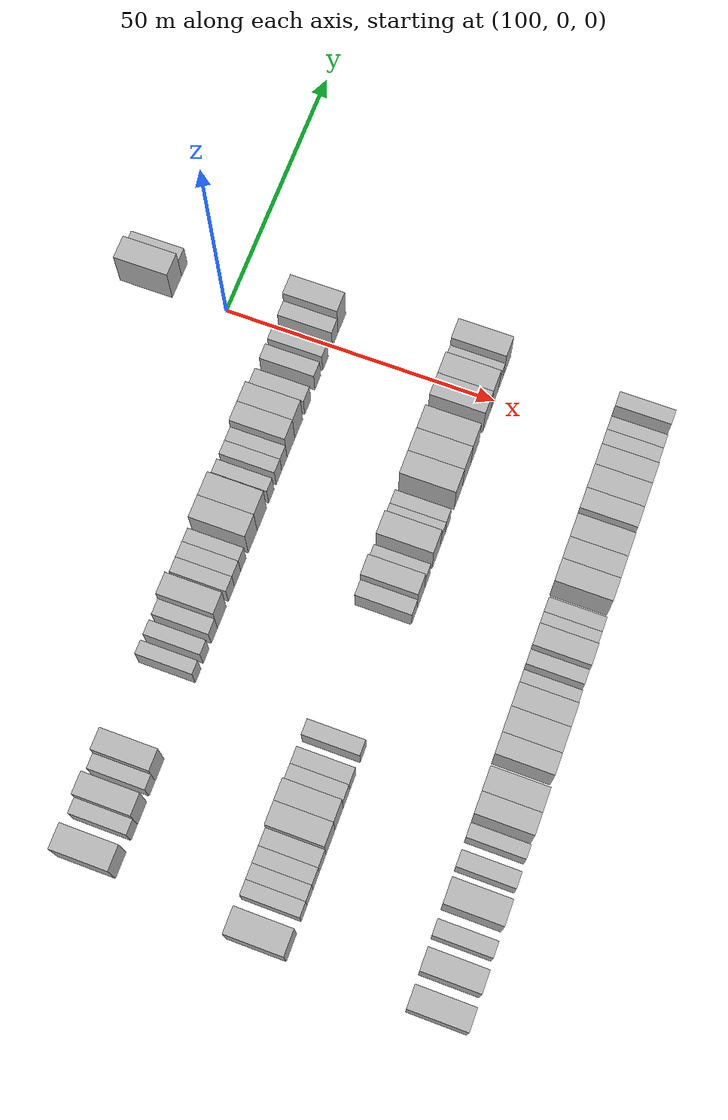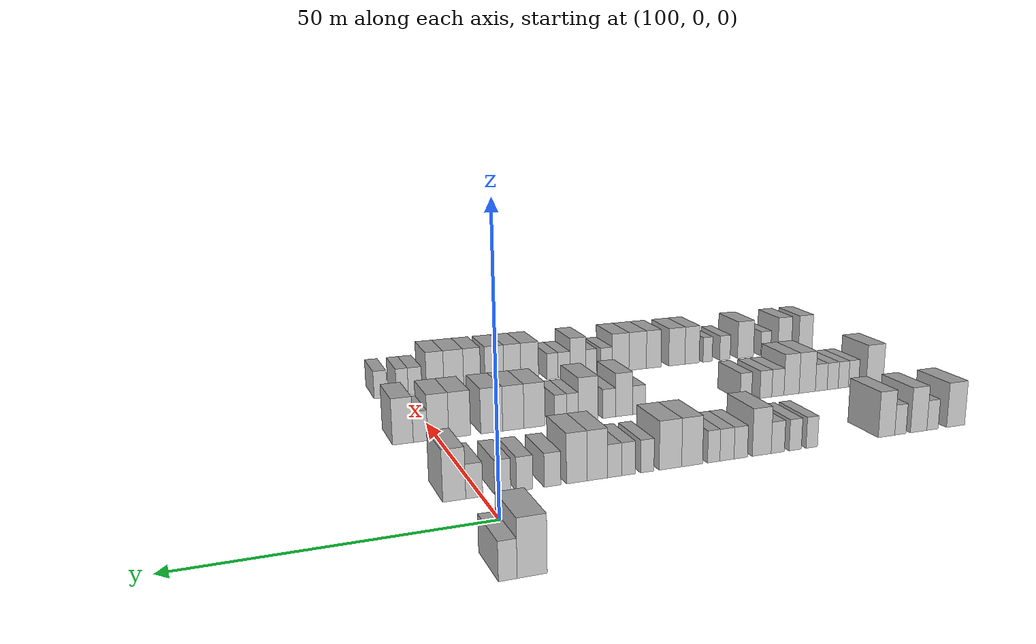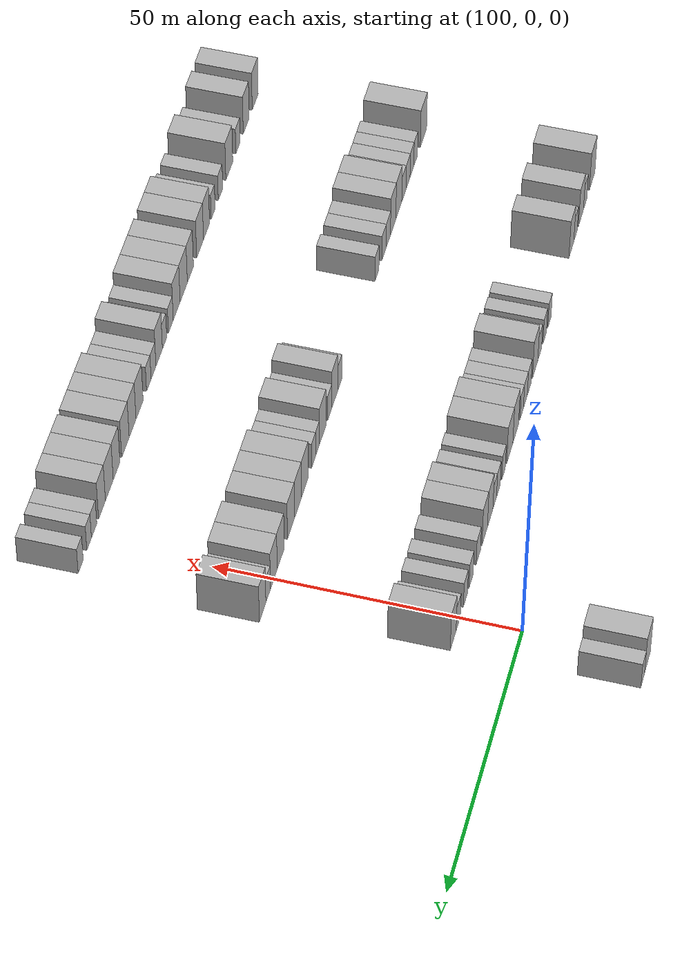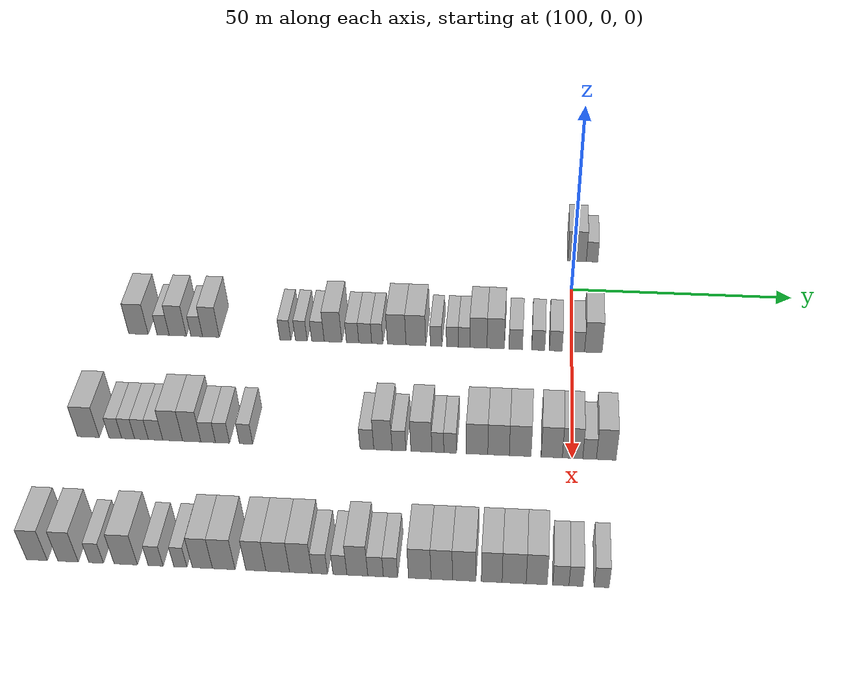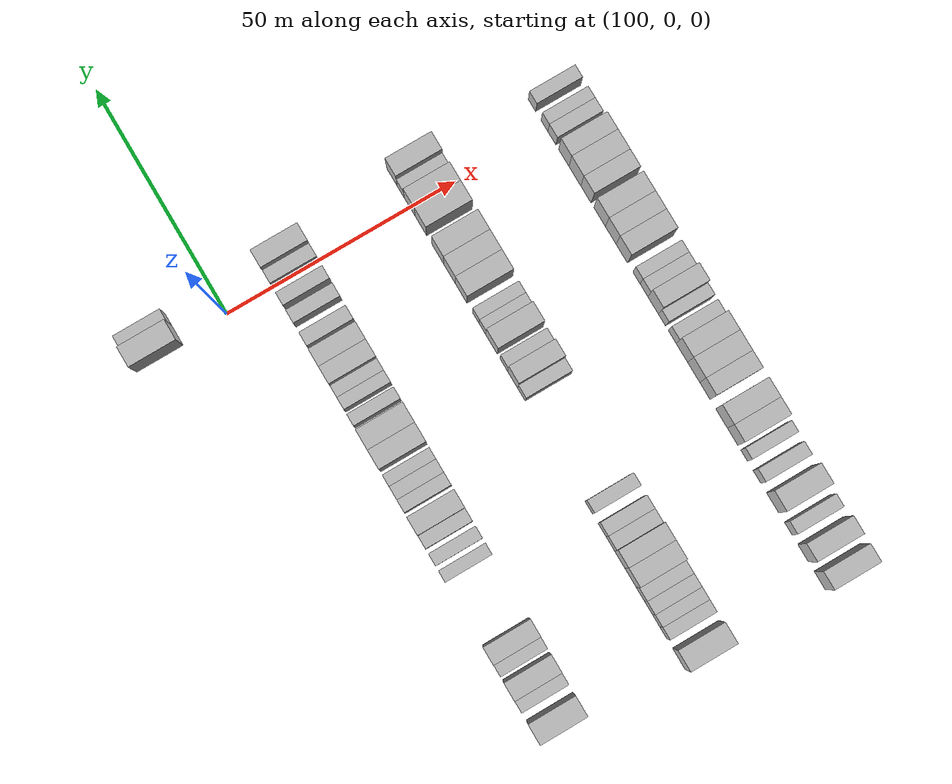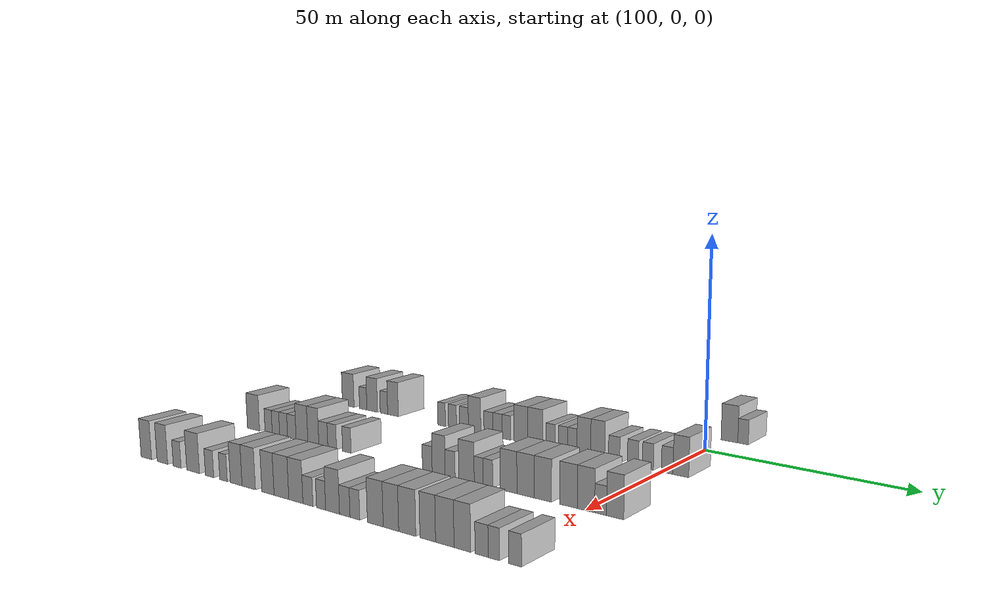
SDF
<sdf version="1.6">
 <world name="default">
  <model name="building_555">
   <static>1</static>
   <pose>85.0000 1.2476 0 0.000000 0.000000 0.000000</pose>
   <link name="link">
    <pose>0 0 4.50 0 0 0</pose>
    <collision name="collision"><geometry><box><size>10.0000 4.3762 9.0000</size></box></geometry></collision>
    <visual name="visual">
     <cast_shadows>0</cast_shadows>
     <geometry><box><size>10.0000 4.3762 9.0000</size></box></geometry>
     <material>
      <script>
       <uri>model://HANNAS_wall/materials/scripts</uri>
       <uri>model://HANNAS_wall/materials/textures</uri>
       <name>vrc/HANNAS_wall</name>
      </script>
     </material>
    </visual>
   </link>
  </model>
  <model name="building_556">
   <static>1</static>
   <pose>85.0000 4.7857 0 0.000000 0.000000 0.000000</pose>
   <link name="link">
    <pose>0 0 3.00 0 0 0</pose>
    <collision name="collision"><geometry><box><size>10.0000 2.7001 6.0000</size></box></geometry></collision>
    <visual name="visual">
     <cast_shadows>0</cast_shadows>
     <geometry><box><size>10.0000 2.7001 6.0000</size></box></geometry>
     <material>
      <script>
       <uri>model://HANNAS_wall/materials/scripts</uri>
       <uri>model://HANNAS_wall/materials/textures</uri>
       <name>vrc/HANNAS_wall</name>
      </script>
     </material>
    </visual>
   </link>
  </model>
  <model name="building_762">
   <static>1</static>
   <pose>115.0000 -95.6572 0 0.000000 0.000000 0.000000</pose>
   <link name="link">
    <pose>0 0 4.50 0 0 0</pose>
    <collision name="collision"><geometry><box><size>10.0000 4.3478 9.0000</size></box></geometry></collision>
    <visual name="visual">
     <cast_shadows>0</cast_shadows>
     <geometry><box><size>10.0000 4.3478 9.0000</size></box></geometry>
     <material>
      <script>
       <uri>model://HANNAS_wall/materials/scripts</uri>
       <uri>model://HANNAS_wall/materials/textures</uri>
       <name>vrc/HANNAS_wall</name>
      </script>
     </material>
    </visual>
   </link>
  </model>
  <model name="building_763">
   <static>1</static>
   <pose>115.0000 -90.1436 0 0.000000 0.000000 0.000000</pose>
   <link name="link">
    <pose>0 0 3.00 0 0 0</pose>
    <collision name="collision"><geometry><box><size>10.0000 2.6794 6.0000</size></box></geometry></collision>
    <visual name="visual">
     <cast_shadows>0</cast_shadows>
     <geometry><box><size>10.0000 2.6794 6.0000</size></box></geometry>
     <material>
      <script>
       <uri>model://HANNAS_wall/materials/scripts</uri>
       <uri>model://HANNAS_wall/materials/textures</uri>
       <name>vrc/HANNAS_wall</name>
      </script>
     </material>
    </visual>
   </link>
  </model>
  <model name="building_764">
   <static>1</static>
   <pose>115.0000 -86.8803 0 0.000000 0.000000 0.000000</pose>
   <link name="link">
    <pose>0 0 4.50 0 0 0</pose>
    <collision name="collision"><geometry><box><size>10.0000 3.8473 9.0000</size></box></geometry></collision>
    <visual name="visual">
     <cast_shadows>0</cast_shadows>
     <geometry><box><size>10.0000 3.8473 9.0000</size></box></geometry>
     <material>
      <script>
       <uri>model://HANNAS_wall/materials/scripts</uri>
       <uri>model://HANNAS_wall/materials/textures</uri>
       <name>vrc/HANNAS_wall</name>
      </script>
     </material>
    </visual>
   </link>
  </model>
  <model name="building_765">
   <static>1</static>
   <pose>115.0000 -82.6501 0 0.000000 0.000000 0.000000</pose>
   <link name="link">
    <pose>0 0 3.00 0 0 0</pose>
    <collision name="collision"><geometry><box><size>10.0000 2.6130 6.0000</size></box></geometry></collision>
    <visual name="visual">
     <cast_shadows>0</cast_shadows>
     <geometry><box><size>10.0000 2.6130 6.0000</size></box></geometry>
     <material>
      <script>
       <uri>model://HANNAS_wall/materials/scripts</uri>
       <uri>model://HANNAS_wall/materials/textures</uri>
       <name>vrc/HANNAS_wall</name>
      </script>
     </material>
    </visual>
   </link>
  </model>
  <model name="building_766">
   <static>1</static>
   <pose>115.0000 -79.4678 0 0.000000 0.000000 0.000000</pose>
   <link name="link">
    <pose>0 0 4.50 0 0 0</pose>
    <collision name="collision"><geometry><box><size>10.0000 3.7517 9.0000</size></box></geometry></collision>
    <visual name="visual">
     <cast_shadows>0</cast_shadows>
     <geometry><box><size>10.0000 3.7517 9.0000</size></box></geometry>
     <material>
      <script>
       <uri>model://HANNAS_wall/materials/scripts</uri>
       <uri>model://HANNAS_wall/materials/textures</uri>
       <name>vrc/HANNAS_wall</name>
      </script>
     </material>
    </visual>
   </link>
  </model>
  <model name="building_767">
   <static>1</static>
   <pose>115.0000 -62.9180 0 0.000000 0.000000 0.000000</pose>
   <link name="link">
    <pose>0 0 3.00 0 0 0</pose>
    <collision name="collision"><geometry><box><size>10.0000 2.4493 6.0000</size></box></geometry></collision>
    <visual name="visual">
     <cast_shadows>0</cast_shadows>
     <geometry><box><size>10.0000 2.4493 6.0000</size></box></geometry>
     <material>
      <script>
       <uri>model://HANNAS_wall/materials/scripts</uri>
       <uri>model://HANNAS_wall/materials/textures</uri>
       <name>vrc/HANNAS_wall</name>
      </script>
     </material>
    </visual>
   </link>
  </model>
  <model name="building_768">
   <static>1</static>
   <pose>115.0000 -59.3934 0 0.000000 0.000000 0.000000</pose>
   <link name="link">
    <pose>0 0 3.00 0 0 0</pose>
    <collision name="collision"><geometry><box><size>10.0000 2.5999 6.0000</size></box></geometry></collision>
    <visual name="visual">
     <cast_shadows>0</cast_shadows>
     <geometry><box><size>10.0000 2.5999 6.0000</size></box></geometry>
     <material>
      <script>
       <uri>model://HANNAS_wall/materials/scripts</uri>
       <uri>model://HANNAS_wall/materials/textures</uri>
       <name>vrc/HANNAS_wall</name>
      </script>
     </material>
    </visual>
   </link>
  </model>
  <model name="building_769">
   <static>1</static>
   <pose>115.0000 -55.7034 0 0.000000 0.000000 0.000000</pose>
   <link name="link">
    <pose>0 0 3.00 0 0 0</pose>
    <collision name="collision"><geometry><box><size>10.0000 2.7802 6.0000</size></box></geometry></collision>
    <visual name="visual">
     <cast_shadows>0</cast_shadows>
     <geometry><box><size>10.0000 2.7802 6.0000</size></box></geometry>
     <material>
      <script>
       <uri>model://HANNAS_wall/materials/scripts</uri>
       <uri>model://HANNAS_wall/materials/textures</uri>
       <name>vrc/HANNAS_wall</name>
      </script>
     </material>
    </visual>
   </link>
  </model>
  <model name="building_770">
   <static>1</static>
   <pose>115.0000 -52.3634 0 0.000000 0.000000 0.000000</pose>
   <link name="link">
    <pose>0 0 4.50 0 0 0</pose>
    <collision name="collision"><geometry><box><size>10.0000 3.8999 9.0000</size></box></geometry></collision>
    <visual name="visual">
     <cast_shadows>0</cast_shadows>
     <geometry><box><size>10.0000 3.8999 9.0000</size></box></geometry>
     <material>
      <script>
       <uri>model://HANNAS_wall/materials/scripts</uri>
       <uri>model://HANNAS_wall/materials/textures</uri>
       <name>vrc/HANNAS_wall</name>
      </script>
     </material>
    </visual>
   </link>
  </model>
  <model name="building_771">
   <static>1</static>
   <pose>115.0000 -48.0493 0 0.000000 0.000000 0.000000</pose>
   <link name="link">
    <pose>0 0 3.00 0 0 0</pose>
    <collision name="collision"><geometry><box><size>10.0000 2.7282 6.0000</size></box></geometry></collision>
    <visual name="visual">
     <cast_shadows>0</cast_shadows>
     <geometry><box><size>10.0000 2.7282 6.0000</size></box></geometry>
     <material>
      <script>
       <uri>model://HANNAS_wall/materials/scripts</uri>
       <uri>model://HANNAS_wall/materials/textures</uri>
       <name>vrc/HANNAS_wall</name>
      </script>
     </material>
    </visual>
   </link>
  </model>
  <model name="building_772">
   <static>1</static>
   <pose>115.0000 -45.2593 0 0.000000 0.000000 0.000000</pose>
   <link name="link">
    <pose>0 0 3.00 0 0 0</pose>
    <collision name="collision"><geometry><box><size>10.0000 2.8518 6.0000</size></box></geometry></collision>
    <visual name="visual">
     <cast_shadows>0</cast_shadows>
     <geometry><box><size>10.0000 2.8518 6.0000</size></box></geometry>
     <material>
      <script>
       <uri>model://HANNAS_wall/materials/scripts</uri>
       <uri>model://HANNAS_wall/materials/textures</uri>
       <name>vrc/HANNAS_wall</name>
      </script>
     </material>
    </visual>
   </link>
  </model>
  <model name="building_773">
   <static>1</static>
   <pose>115.0000 -42.6046 0 0.000000 0.000000 0.000000</pose>
   <link name="link">
    <pose>0 0 3.00 0 0 0</pose>
    <collision name="collision"><geometry><box><size>10.0000 2.4575 6.0000</size></box></geometry></collision>
    <visual name="visual">
     <cast_shadows>0</cast_shadows>
     <geometry><box><size>10.0000 2.4575 6.0000</size></box></geometry>
     <material>
      <script>
       <uri>model://HANNAS_wall/materials/scripts</uri>
       <uri>model://HANNAS_wall/materials/textures</uri>
       <name>vrc/HANNAS_wall</name>
      </script>
     </material>
    </visual>
   </link>
  </model>
  <model name="building_774">
   <static>1</static>
   <pose>115.0000 -38.3271 0 0.000000 0.000000 0.000000</pose>
   <link name="link">
    <pose>0 0 4.50 0 0 0</pose>
    <collision name="collision"><geometry><box><size>10.0000 4.0976 9.0000</size></box></geometry></collision>
    <visual name="visual">
     <cast_shadows>0</cast_shadows>
     <geometry><box><size>10.0000 4.0976 9.0000</size></box></geometry>
     <material>
      <script>
       <uri>model://HANNAS_wall/materials/scripts</uri>
       <uri>model://HANNAS_wall/materials/textures</uri>
       <name>vrc/HANNAS_wall</name>
      </script>
     </material>
    </visual>
   </link>
  </model>
  <model name="building_775">
   <static>1</static>
   <pose>115.0000 -34.1061 0 0.000000 0.000000 0.000000</pose>
   <link name="link">
    <pose>0 0 4.50 0 0 0</pose>
    <collision name="collision"><geometry><box><size>10.0000 4.3443 9.0000</size></box></geometry></collision>
    <visual name="visual">
     <cast_shadows>0</cast_shadows>
     <geometry><box><size>10.0000 4.3443 9.0000</size></box></geometry>
     <material>
      <script>
       <uri>model://HANNAS_wall/materials/scripts</uri>
       <uri>model://HANNAS_wall/materials/textures</uri>
       <name>vrc/HANNAS_wall</name>
      </script>
     </material>
    </visual>
   </link>
  </model>
  <model name="building_776">
   <static>1</static>
   <pose>115.0000 -29.6674 0 0.000000 0.000000 0.000000</pose>
   <link name="link">
    <pose>0 0 3.00 0 0 0</pose>
    <collision name="collision"><geometry><box><size>10.0000 2.5332 6.0000</size></box></geometry></collision>
    <visual name="visual">
     <cast_shadows>0</cast_shadows>
     <geometry><box><size>10.0000 2.5332 6.0000</size></box></geometry>
     <material>
      <script>
       <uri>model://HANNAS_wall/materials/scripts</uri>
       <uri>model://HANNAS_wall/materials/textures</uri>
       <name>vrc/HANNAS_wall</name>
      </script>
     </material>
    </visual>
   </link>
  </model>
  <model name="building_777">
   <static>1</static>
   <pose>115.0000 -26.1018 0 0.000000 0.000000 0.000000</pose>
   <link name="link">
    <pose>0 0 3.00 0 0 0</pose>
    <collision name="collision"><geometry><box><size>10.0000 2.5980 6.0000</size></box></geometry></collision>
    <visual name="visual">
     <cast_shadows>0</cast_shadows>
     <geometry><box><size>10.0000 2.5980 6.0000</size></box></geometry>
     <material>
      <script>
       <uri>model://HANNAS_wall/materials/scripts</uri>
       <uri>model://HANNAS_wall/materials/textures</uri>
       <name>vrc/HANNAS_wall</name>
      </script>
     </material>
    </visual>
   </link>
  </model>
  <model name="building_778">
   <static>1</static>
   <pose>115.0000 -23.5207 0 0.000000 0.000000 0.000000</pose>
   <link name="link">
    <pose>0 0 3.00 0 0 0</pose>
    <collision name="collision"><geometry><box><size>10.0000 2.5643 6.0000</size></box></geometry></collision>
    <visual name="visual">
     <cast_shadows>0</cast_shadows>
     <geometry><box><size>10.0000 2.5643 6.0000</size></box></geometry>
     <material>
      <script>
       <uri>model://HANNAS_wall/materials/scripts</uri>
       <uri>model://HANNAS_wall/materials/textures</uri>
       <name>vrc/HANNAS_wall</name>
      </script>
     </material>
    </visual>
   </link>
  </model>
  <model name="building_779">
   <static>1</static>
   <pose>115.0000 -20.3742 0 0.000000 0.000000 0.000000</pose>
   <link name="link">
    <pose>0 0 4.50 0 0 0</pose>
    <collision name="collision"><geometry><box><size>10.0000 3.7287 9.0000</size></box></geometry></collision>
    <visual name="visual">
     <cast_shadows>0</cast_shadows>
     <geometry><box><size>10.0000 3.7287 9.0000</size></box></geometry>
     <material>
      <script>
       <uri>model://HANNAS_wall/materials/scripts</uri>
       <uri>model://HANNAS_wall/materials/textures</uri>
       <name>vrc/HANNAS_wall</name>
      </script>
     </material>
    </visual>
   </link>
  </model>
  <model name="building_780">
   <static>1</static>
   <pose>115.0000 -16.6239 0 0.000000 0.000000 0.000000</pose>
   <link name="link">
    <pose>0 0 4.50 0 0 0</pose>
    <collision name="collision"><geometry><box><size>10.0000 3.7720 9.0000</size></box></geometry></collision>
    <visual name="visual">
     <cast_shadows>0</cast_shadows>
     <geometry><box><size>10.0000 3.7720 9.0000</size></box></geometry>
     <material>
      <script>
       <uri>model://HANNAS_wall/materials/scripts</uri>
       <uri>model://HANNAS_wall/materials/textures</uri>
       <name>vrc/HANNAS_wall</name>
      </script>
     </material>
    </visual>
   </link>
  </model>
  <model name="building_781">
   <static>1</static>
   <pose>115.0000 -12.2601 0 0.000000 0.000000 0.000000</pose>
   <link name="link">
    <pose>0 0 3.00 0 0 0</pose>
    <collision name="collision"><geometry><box><size>10.0000 2.9555 6.0000</size></box></geometry></collision>
    <visual name="visual">
     <cast_shadows>0</cast_shadows>
     <geometry><box><size>10.0000 2.9555 6.0000</size></box></geometry>
     <material>
      <script>
       <uri>model://HANNAS_wall/materials/scripts</uri>
       <uri>model://HANNAS_wall/materials/textures</uri>
       <name>vrc/HANNAS_wall</name>
      </script>
     </material>
    </visual>
   </link>
  </model>
  <model name="building_782">
   <static>1</static>
   <pose>115.0000 -7.3558 0 0.000000 0.000000 0.000000</pose>
   <link name="link">
    <pose>0 0 3.00 0 0 0</pose>
    <collision name="collision"><geometry><box><size>10.0000 2.8531 6.0000</size></box></geometry></collision>
    <visual name="visual">
     <cast_shadows>0</cast_shadows>
     <geometry><box><size>10.0000 2.8531 6.0000</size></box></geometry>
     <material>
      <script>
       <uri>model://HANNAS_wall/materials/scripts</uri>
       <uri>model://HANNAS_wall/materials/textures</uri>
       <name>vrc/HANNAS_wall</name>
      </script>
     </material>
    </visual>
   </link>
  </model>
  <model name="building_783">
   <static>1</static>
   <pose>115.0000 -3.5425 0 0.000000 0.000000 0.000000</pose>
   <link name="link">
    <pose>0 0 3.00 0 0 0</pose>
    <collision name="collision"><geometry><box><size>10.0000 2.7734 6.0000</size></box></geometry></collision>
    <visual name="visual">
     <cast_shadows>0</cast_shadows>
     <geometry><box><size>10.0000 2.7734 6.0000</size></box></geometry>
     <material>
      <script>
       <uri>model://HANNAS_wall/materials/scripts</uri>
       <uri>model://HANNAS_wall/materials/textures</uri>
       <name>vrc/HANNAS_wall</name>
      </script>
     </material>
    </visual>
   </link>
  </model>
  <model name="building_784">
   <static>1</static>
   <pose>115.0000 1.2769 0 0.000000 0.000000 0.000000</pose>
   <link name="link">
    <pose>0 0 3.00 0 0 0</pose>
    <collision name="collision"><geometry><box><size>10.0000 2.8654 6.0000</size></box></geometry></collision>
    <visual name="visual">
     <cast_shadows>0</cast_shadows>
     <geometry><box><size>10.0000 2.8654 6.0000</size></box></geometry>
     <material>
      <script>
       <uri>model://HANNAS_wall/materials/scripts</uri>
       <uri>model://HANNAS_wall/materials/textures</uri>
       <name>vrc/HANNAS_wall</name>
      </script>
     </material>
    </visual>
   </link>
  </model>
  <model name="building_785">
   <static>1</static>
   <pose>115.0000 4.6219 0 0.000000 0.000000 0.000000</pose>
   <link name="link">
    <pose>0 0 4.50 0 0 0</pose>
    <collision name="collision"><geometry><box><size>10.0000 3.8247 9.0000</size></box></geometry></collision>
    <visual name="visual">
     <cast_shadows>0</cast_shadows>
     <geometry><box><size>10.0000 3.8247 9.0000</size></box></geometry>
     <material>
      <script>
       <uri>model://HANNAS_wall/materials/scripts</uri>
       <uri>model://HANNAS_wall/materials/textures</uri>
       <name>vrc/HANNAS_wall</name>
      </script>
     </material>
    </visual>
   </link>
  </model>
  <model name="building_985">
   <static>1</static>
   <pose>145.0000 -98.2015 0 0.000000 0.000000 0.000000</pose>
   <link name="link">
    <pose>0 0 4.50 0 0 0</pose>
    <collision name="collision"><geometry><box><size>10.0000 4.4924 9.0000</size></box></geometry></collision>
    <visual name="visual">
     <cast_shadows>0</cast_shadows>
     <geometry><box><size>10.0000 4.4924 9.0000</size></box></geometry>
     <material>
      <script>
       <uri>model://HANNAS_wall/materials/scripts</uri>
       <uri>model://HANNAS_wall/materials/textures</uri>
       <name>vrc/HANNAS_wall</name>
      </script>
     </material>
    </visual>
   </link>
  </model>
  <model name="building_986">
   <static>1</static>
   <pose>145.0000 -92.6456 0 0.000000 0.000000 0.000000</pose>
   <link name="link">
    <pose>0 0 3.00 0 0 0</pose>
    <collision name="collision"><geometry><box><size>10.0000 2.6193 6.0000</size></box></geometry></collision>
    <visual name="visual">
     <cast_shadows>0</cast_shadows>
     <geometry><box><size>10.0000 2.6193 6.0000</size></box></geometry>
     <material>
      <script>
       <uri>model://HANNAS_wall/materials/scripts</uri>
       <uri>model://HANNAS_wall/materials/textures</uri>
       <name>vrc/HANNAS_wall</name>
      </script>
     </material>
    </visual>
   </link>
  </model>
  <model name="building_987">
   <static>1</static>
   <pose>145.0000 -90.0050 0 0.000000 0.000000 0.000000</pose>
   <link name="link">
    <pose>0 0 3.00 0 0 0</pose>
    <collision name="collision"><geometry><box><size>10.0000 2.6620 6.0000</size></box></geometry></collision>
    <visual name="visual">
     <cast_shadows>0</cast_shadows>
     <geometry><box><size>10.0000 2.6620 6.0000</size></box></geometry>
     <material>
      <script>
       <uri>model://HANNAS_wall/materials/scripts</uri>
       <uri>model://HANNAS_wall/materials/textures</uri>
       <name>vrc/HANNAS_wall</name>
      </script>
     </material>
    </visual>
   </link>
  </model>
  <model name="building_988">
   <static>1</static>
   <pose>145.0000 -87.2623 0 0.000000 0.000000 0.000000</pose>
   <link name="link">
    <pose>0 0 3.00 0 0 0</pose>
    <collision name="collision"><geometry><box><size>10.0000 2.8235 6.0000</size></box></geometry></collision>
    <visual name="visual">
     <cast_shadows>0</cast_shadows>
     <geometry><box><size>10.0000 2.8235 6.0000</size></box></geometry>
     <material>
      <script>
       <uri>model://HANNAS_wall/materials/scripts</uri>
       <uri>model://HANNAS_wall/materials/textures</uri>
       <name>vrc/HANNAS_wall</name>
      </script>
     </material>
    </visual>
   </link>
  </model>
  <model name="building_989">
   <static>1</static>
   <pose>145.0000 -84.3665 0 0.000000 0.000000 0.000000</pose>
   <link name="link">
    <pose>0 0 3.00 0 0 0</pose>
    <collision name="collision"><geometry><box><size>10.0000 2.9680 6.0000</size></box></geometry></collision>
    <visual name="visual">
     <cast_shadows>0</cast_shadows>
     <geometry><box><size>10.0000 2.9680 6.0000</size></box></geometry>
     <material>
      <script>
       <uri>model://HANNAS_wall/materials/scripts</uri>
       <uri>model://HANNAS_wall/materials/textures</uri>
       <name>vrc/HANNAS_wall</name>
      </script>
     </material>
    </visual>
   </link>
  </model>
  <model name="building_990">
   <static>1</static>
   <pose>145.0000 -80.8509 0 0.000000 0.000000 0.000000</pose>
   <link name="link">
    <pose>0 0 4.50 0 0 0</pose>
    <collision name="collision"><geometry><box><size>10.0000 4.0632 9.0000</size></box></geometry></collision>
    <visual name="visual">
     <cast_shadows>0</cast_shadows>
     <geometry><box><size>10.0000 4.0632 9.0000</size></box></geometry>
     <material>
      <script>
       <uri>model://HANNAS_wall/materials/scripts</uri>
       <uri>model://HANNAS_wall/materials/textures</uri>
       <name>vrc/HANNAS_wall</name>
      </script>
     </material>
    </visual>
   </link>
  </model>
  <model name="building_991">
   <static>1</static>
   <pose>145.0000 -76.9511 0 0.000000 0.000000 0.000000</pose>
   <link name="link">
    <pose>0 0 4.50 0 0 0</pose>
    <collision name="collision"><geometry><box><size>10.0000 3.7365 9.0000</size></box></geometry></collision>
    <visual name="visual">
     <cast_shadows>0</cast_shadows>
     <geometry><box><size>10.0000 3.7365 9.0000</size></box></geometry>
     <material>
      <script>
       <uri>model://HANNAS_wall/materials/scripts</uri>
       <uri>model://HANNAS_wall/materials/textures</uri>
       <name>vrc/HANNAS_wall</name>
      </script>
     </material>
    </visual>
   </link>
  </model>
  <model name="building_992">
   <static>1</static>
   <pose>145.0000 -73.5906 0 0.000000 0.000000 0.000000</pose>
   <link name="link">
    <pose>0 0 3.00 0 0 0</pose>
    <collision name="collision"><geometry><box><size>10.0000 2.9845 6.0000</size></box></geometry></collision>
    <visual name="visual">
     <cast_shadows>0</cast_shadows>
     <geometry><box><size>10.0000 2.9845 6.0000</size></box></geometry>
     <material>
      <script>
       <uri>model://HANNAS_wall/materials/scripts</uri>
       <uri>model://HANNAS_wall/materials/textures</uri>
       <name>vrc/HANNAS_wall</name>
      </script>
     </material>
    </visual>
   </link>
  </model>
  <model name="building_993">
   <static>1</static>
   <pose>145.0000 -70.6553 0 0.000000 0.000000 0.000000</pose>
   <link name="link">
    <pose>0 0 3.00 0 0 0</pose>
    <collision name="collision"><geometry><box><size>10.0000 2.8861 6.0000</size></box></geometry></collision>
    <visual name="visual">
     <cast_shadows>0</cast_shadows>
     <geometry><box><size>10.0000 2.8861 6.0000</size></box></geometry>
     <material>
      <script>
       <uri>model://HANNAS_wall/materials/scripts</uri>
       <uri>model://HANNAS_wall/materials/textures</uri>
       <name>vrc/HANNAS_wall</name>
      </script>
     </material>
    </visual>
   </link>
  </model>
  <model name="building_994">
   <static>1</static>
   <pose>145.0000 -65.8470 0 0.000000 0.000000 0.000000</pose>
   <link name="link">
    <pose>0 0 3.00 0 0 0</pose>
    <collision name="collision"><geometry><box><size>10.0000 2.7307 6.0000</size></box></geometry></collision>
    <visual name="visual">
     <cast_shadows>0</cast_shadows>
     <geometry><box><size>10.0000 2.7307 6.0000</size></box></geometry>
     <material>
      <script>
       <uri>model://HANNAS_wall/materials/scripts</uri>
       <uri>model://HANNAS_wall/materials/textures</uri>
       <name>vrc/HANNAS_wall</name>
      </script>
     </material>
    </visual>
   </link>
  </model>
  <model name="building_995">
   <static>1</static>
   <pose>145.0000 -41.2814 0 0.000000 0.000000 0.000000</pose>
   <link name="link">
    <pose>0 0 3.00 0 0 0</pose>
    <collision name="collision"><geometry><box><size>10.0000 2.8001 6.0000</size></box></geometry></collision>
    <visual name="visual">
     <cast_shadows>0</cast_shadows>
     <geometry><box><size>10.0000 2.8001 6.0000</size></box></geometry>
     <material>
      <script>
       <uri>model://HANNAS_wall/materials/scripts</uri>
       <uri>model://HANNAS_wall/materials/textures</uri>
       <name>vrc/HANNAS_wall</name>
      </script>
     </material>
    </visual>
   </link>
  </model>
  <model name="building_996">
   <static>1</static>
   <pose>145.0000 -38.0317 0 0.000000 0.000000 0.000000</pose>
   <link name="link">
    <pose>0 0 4.50 0 0 0</pose>
    <collision name="collision"><geometry><box><size>10.0000 3.6993 9.0000</size></box></geometry></collision>
    <visual name="visual">
     <cast_shadows>0</cast_shadows>
     <geometry><box><size>10.0000 3.6993 9.0000</size></box></geometry>
     <material>
      <script>
       <uri>model://HANNAS_wall/materials/scripts</uri>
       <uri>model://HANNAS_wall/materials/textures</uri>
       <name>vrc/HANNAS_wall</name>
      </script>
     </material>
    </visual>
   </link>
  </model>
  <model name="building_997">
   <static>1</static>
   <pose>145.0000 -34.7916 0 0.000000 0.000000 0.000000</pose>
   <link name="link">
    <pose>0 0 3.00 0 0 0</pose>
    <collision name="collision"><geometry><box><size>10.0000 2.7809 6.0000</size></box></geometry></collision>
    <visual name="visual">
     <cast_shadows>0</cast_shadows>
     <geometry><box><size>10.0000 2.7809 6.0000</size></box></geometry>
     <material>
      <script>
       <uri>model://HANNAS_wall/materials/scripts</uri>
       <uri>model://HANNAS_wall/materials/textures</uri>
       <name>vrc/HANNAS_wall</name>
      </script>
     </material>
    </visual>
   </link>
  </model>
  <model name="building_998">
   <static>1</static>
   <pose>145.0000 -30.2820 0 0.000000 0.000000 0.000000</pose>
   <link name="link">
    <pose>0 0 4.50 0 0 0</pose>
    <collision name="collision"><geometry><box><size>10.0000 4.2382 9.0000</size></box></geometry></collision>
    <visual name="visual">
     <cast_shadows>0</cast_shadows>
     <geometry><box><size>10.0000 4.2382 9.0000</size></box></geometry>
     <material>
      <script>
       <uri>model://HANNAS_wall/materials/scripts</uri>
       <uri>model://HANNAS_wall/materials/textures</uri>
       <name>vrc/HANNAS_wall</name>
      </script>
     </material>
    </visual>
   </link>
  </model>
  <model name="building_999">
   <static>1</static>
   <pose>145.0000 -26.9569 0 0.000000 0.000000 0.000000</pose>
   <link name="link">
    <pose>0 0 3.00 0 0 0</pose>
    <collision name="collision"><geometry><box><size>10.0000 2.4120 6.0000</size></box></geometry></collision>
    <visual name="visual">
     <cast_shadows>0</cast_shadows>
     <geometry><box><size>10.0000 2.4120 6.0000</size></box></geometry>
     <material>
      <script>
       <uri>model://HANNAS_wall/materials/scripts</uri>
       <uri>model://HANNAS_wall/materials/textures</uri>
       <name>vrc/HANNAS_wall</name>
      </script>
     </material>
    </visual>
   </link>
  </model>
  <model name="building_1000">
   <static>1</static>
   <pose>145.0000 -24.4877 0 0.000000 0.000000 0.000000</pose>
   <link name="link">
    <pose>0 0 3.00 0 0 0</pose>
    <collision name="collision"><geometry><box><size>10.0000 2.5264 6.0000</size></box></geometry></collision>
    <visual name="visual">
     <cast_shadows>0</cast_shadows>
     <geometry><box><size>10.0000 2.5264 6.0000</size></box></geometry>
     <material>
      <script>
       <uri>model://HANNAS_wall/materials/scripts</uri>
       <uri>model://HANNAS_wall/materials/textures</uri>
       <name>vrc/HANNAS_wall</name>
      </script>
     </material>
    </visual>
   </link>
  </model>
  <model name="building_1001">
   <static>1</static>
   <pose>145.0000 -19.0742 0 0.000000 0.000000 0.000000</pose>
   <link name="link">
    <pose>0 0 4.50 0 0 0</pose>
    <collision name="collision"><geometry><box><size>10.0000 4.3006 9.0000</size></box></geometry></collision>
    <visual name="visual">
     <cast_shadows>0</cast_shadows>
     <geometry><box><size>10.0000 4.3006 9.0000</size></box></geometry>
     <material>
      <script>
       <uri>model://HANNAS_wall/materials/scripts</uri>
       <uri>model://HANNAS_wall/materials/textures</uri>
       <name>vrc/HANNAS_wall</name>
      </script>
     </material>
    </visual>
   </link>
  </model>
  <model name="building_1002">
   <static>1</static>
   <pose>145.0000 -14.7671 0 0.000000 0.000000 0.000000</pose>
   <link name="link">
    <pose>0 0 4.50 0 0 0</pose>
    <collision name="collision"><geometry><box><size>10.0000 4.3137 9.0000</size></box></geometry></collision>
    <visual name="visual">
     <cast_shadows>0</cast_shadows>
     <geometry><box><size>10.0000 4.3137 9.0000</size></box></geometry>
     <material>
      <script>
       <uri>model://HANNAS_wall/materials/scripts</uri>
       <uri>model://HANNAS_wall/materials/textures</uri>
       <name>vrc/HANNAS_wall</name>
      </script>
     </material>
    </visual>
   </link>
  </model>
  <model name="building_1003">
   <static>1</static>
   <pose>145.0000 -10.4313 0 0.000000 0.000000 0.000000</pose>
   <link name="link">
    <pose>0 0 4.50 0 0 0</pose>
    <collision name="collision"><geometry><box><size>10.0000 4.3578 9.0000</size></box></geometry></collision>
    <visual name="visual">
     <cast_shadows>0</cast_shadows>
     <geometry><box><size>10.0000 4.3578 9.0000</size></box></geometry>
     <material>
      <script>
       <uri>model://HANNAS_wall/materials/scripts</uri>
       <uri>model://HANNAS_wall/materials/textures</uri>
       <name>vrc/HANNAS_wall</name>
      </script>
     </material>
    </visual>
   </link>
  </model>
  <model name="building_1004">
   <static>1</static>
   <pose>145.0000 -4.1289 0 0.000000 0.000000 0.000000</pose>
   <link name="link">
    <pose>0 0 4.50 0 0 0</pose>
    <collision name="collision"><geometry><box><size>10.0000 4.2470 9.0000</size></box></geometry></collision>
    <visual name="visual">
     <cast_shadows>0</cast_shadows>
     <geometry><box><size>10.0000 4.2470 9.0000</size></box></geometry>
     <material>
      <script>
       <uri>model://HANNAS_wall/materials/scripts</uri>
       <uri>model://HANNAS_wall/materials/textures</uri>
       <name>vrc/HANNAS_wall</name>
      </script>
     </material>
    </visual>
   </link>
  </model>
  <model name="building_1005">
   <static>1</static>
   <pose>145.0000 0.0272 0 0.000000 0.000000 0.000000</pose>
   <link name="link">
    <pose>0 0 4.50 0 0 0</pose>
    <collision name="collision"><geometry><box><size>10.0000 4.0651 9.0000</size></box></geometry></collision>
    <visual name="visual">
     <cast_shadows>0</cast_shadows>
     <geometry><box><size>10.0000 4.0651 9.0000</size></box></geometry>
     <material>
      <script>
       <uri>model://HANNAS_wall/materials/scripts</uri>
       <uri>model://HANNAS_wall/materials/textures</uri>
       <name>vrc/HANNAS_wall</name>
      </script>
     </material>
    </visual>
   </link>
  </model>
  <model name="building_1006">
   <static>1</static>
   <pose>145.0000 3.4234 0 0.000000 0.000000 0.000000</pose>
   <link name="link">
    <pose>0 0 3.00 0 0 0</pose>
    <collision name="collision"><geometry><box><size>10.0000 2.7273 6.0000</size></box></geometry></collision>
    <visual name="visual">
     <cast_shadows>0</cast_shadows>
     <geometry><box><size>10.0000 2.7273 6.0000</size></box></geometry>
     <material>
      <script>
       <uri>model://HANNAS_wall/materials/scripts</uri>
       <uri>model://HANNAS_wall/materials/textures</uri>
       <name>vrc/HANNAS_wall</name>
      </script>
     </material>
    </visual>
   </link>
  </model>
  <model name="building_1007">
   <static>1</static>
   <pose>145.0000 6.7383 0 0.000000 0.000000 0.000000</pose>
   <link name="link">
    <pose>0 0 4.50 0 0 0</pose>
    <collision name="collision"><geometry><box><size>10.0000 3.9027 9.0000</size></box></geometry></collision>
    <visual name="visual">
     <cast_shadows>0</cast_shadows>
     <geometry><box><size>10.0000 3.9027 9.0000</size></box></geometry>
     <material>
      <script>
       <uri>model://HANNAS_wall/materials/scripts</uri>
       <uri>model://HANNAS_wall/materials/textures</uri>
       <name>vrc/HANNAS_wall</name>
      </script>
     </material>
    </visual>
   </link>
  </model>
  <model name="building_1208">
   <static>1</static>
   <pose>175.0000 -99.1918 0 0.000000 0.000000 0.000000</pose>
   <link name="link">
    <pose>0 0 4.50 0 0 0</pose>
    <collision name="collision"><geometry><box><size>10.0000 3.8965 9.0000</size></box></geometry></collision>
    <visual name="visual">
     <cast_shadows>0</cast_shadows>
     <geometry><box><size>10.0000 3.8965 9.0000</size></box></geometry>
     <material>
      <script>
       <uri>model://HANNAS_wall/materials/scripts</uri>
       <uri>model://HANNAS_wall/materials/textures</uri>
       <name>vrc/HANNAS_wall</name>
      </script>
     </material>
    </visual>
   </link>
  </model>
  <model name="building_1209">
   <static>1</static>
   <pose>175.0000 -93.3314 0 0.000000 0.000000 0.000000</pose>
   <link name="link">
    <pose>0 0 4.50 0 0 0</pose>
    <collision name="collision"><geometry><box><size>10.0000 3.8244 9.0000</size></box></geometry></collision>
    <visual name="visual">
     <cast_shadows>0</cast_shadows>
     <geometry><box><size>10.0000 3.8244 9.0000</size></box></geometry>
     <material>
      <script>
       <uri>model://HANNAS_wall/materials/scripts</uri>
       <uri>model://HANNAS_wall/materials/textures</uri>
       <name>vrc/HANNAS_wall</name>
      </script>
     </material>
    </visual>
   </link>
  </model>
  <model name="building_1210">
   <static>1</static>
   <pose>175.0000 -88.0474 0 0.000000 0.000000 0.000000</pose>
   <link name="link">
    <pose>0 0 3.00 0 0 0</pose>
    <collision name="collision"><geometry><box><size>10.0000 2.7438 6.0000</size></box></geometry></collision>
    <visual name="visual">
     <cast_shadows>0</cast_shadows>
     <geometry><box><size>10.0000 2.7438 6.0000</size></box></geometry>
     <material>
      <script>
       <uri>model://HANNAS_wall/materials/scripts</uri>
       <uri>model://HANNAS_wall/materials/textures</uri>
       <name>vrc/HANNAS_wall</name>
      </script>
     </material>
    </visual>
   </link>
  </model>
  <model name="building_1211">
   <static>1</static>
   <pose>175.0000 -82.4904 0 0.000000 0.000000 0.000000</pose>
   <link name="link">
    <pose>0 0 4.50 0 0 0</pose>
    <collision name="collision"><geometry><box><size>10.0000 4.3701 9.0000</size></box></geometry></collision>
    <visual name="visual">
     <cast_shadows>0</cast_shadows>
     <geometry><box><size>10.0000 4.3701 9.0000</size></box></geometry>
     <material>
      <script>
       <uri>model://HANNAS_wall/materials/scripts</uri>
       <uri>model://HANNAS_wall/materials/textures</uri>
       <name>vrc/HANNAS_wall</name>
      </script>
     </material>
    </visual>
   </link>
  </model>
  <model name="building_1212">
   <static>1</static>
   <pose>175.0000 -76.9031 0 0.000000 0.000000 0.000000</pose>
   <link name="link">
    <pose>0 0 3.00 0 0 0</pose>
    <collision name="collision"><geometry><box><size>10.0000 2.8047 6.0000</size></box></geometry></collision>
    <visual name="visual">
     <cast_shadows>0</cast_shadows>
     <geometry><box><size>10.0000 2.8047 6.0000</size></box></geometry>
     <material>
      <script>
       <uri>model://HANNAS_wall/materials/scripts</uri>
       <uri>model://HANNAS_wall/materials/textures</uri>
       <name>vrc/HANNAS_wall</name>
      </script>
     </material>
    </visual>
   </link>
  </model>
  <model name="building_1213">
   <static>1</static>
   <pose>175.0000 -72.2775 0 0.000000 0.000000 0.000000</pose>
   <link name="link">
    <pose>0 0 3.00 0 0 0</pose>
    <collision name="collision"><geometry><box><size>10.0000 2.4464 6.0000</size></box></geometry></collision>
    <visual name="visual">
     <cast_shadows>0</cast_shadows>
     <geometry><box><size>10.0000 2.4464 6.0000</size></box></geometry>
     <material>
      <script>
       <uri>model://HANNAS_wall/materials/scripts</uri>
       <uri>model://HANNAS_wall/materials/textures</uri>
       <name>vrc/HANNAS_wall</name>
      </script>
     </material>
    </visual>
   </link>
  </model>
  <model name="building_1214">
   <static>1</static>
   <pose>175.0000 -68.1742 0 0.000000 0.000000 0.000000</pose>
   <link name="link">
    <pose>0 0 4.50 0 0 0</pose>
    <collision name="collision"><geometry><box><size>10.0000 3.7603 9.0000</size></box></geometry></collision>
    <visual name="visual">
     <cast_shadows>0</cast_shadows>
     <geometry><box><size>10.0000 3.7603 9.0000</size></box></geometry>
     <material>
      <script>
       <uri>model://HANNAS_wall/materials/scripts</uri>
       <uri>model://HANNAS_wall/materials/textures</uri>
       <name>vrc/HANNAS_wall</name>
      </script>
     </material>
    </visual>
   </link>
  </model>
  <model name="building_1215">
   <static>1</static>
   <pose>175.0000 -64.1934 0 0.000000 0.000000 0.000000</pose>
   <link name="link">
    <pose>0 0 4.50 0 0 0</pose>
    <collision name="collision"><geometry><box><size>10.0000 4.2013 9.0000</size></box></geometry></collision>
    <visual name="visual">
     <cast_shadows>0</cast_shadows>
     <geometry><box><size>10.0000 4.2013 9.0000</size></box></geometry>
     <material>
      <script>
       <uri>model://HANNAS_wall/materials/scripts</uri>
       <uri>model://HANNAS_wall/materials/textures</uri>
       <name>vrc/HANNAS_wall</name>
      </script>
     </material>
    </visual>
   </link>
  </model>
  <model name="building_1216">
   <static>1</static>
   <pose>175.0000 -58.2281 0 0.000000 0.000000 0.000000</pose>
   <link name="link">
    <pose>0 0 4.50 0 0 0</pose>
    <collision name="collision"><geometry><box><size>10.0000 3.7293 9.0000</size></box></geometry></collision>
    <visual name="visual">
     <cast_shadows>0</cast_shadows>
     <geometry><box><size>10.0000 3.7293 9.0000</size></box></geometry>
     <material>
      <script>
       <uri>model://HANNAS_wall/materials/scripts</uri>
       <uri>model://HANNAS_wall/materials/textures</uri>
       <name>vrc/HANNAS_wall</name>
      </script>
     </material>
    </visual>
   </link>
  </model>
  <model name="building_1217">
   <static>1</static>
   <pose>175.0000 -54.1617 0 0.000000 0.000000 0.000000</pose>
   <link name="link">
    <pose>0 0 4.50 0 0 0</pose>
    <collision name="collision"><geometry><box><size>10.0000 4.4036 9.0000</size></box></geometry></collision>
    <visual name="visual">
     <cast_shadows>0</cast_shadows>
     <geometry><box><size>10.0000 4.4036 9.0000</size></box></geometry>
     <material>
      <script>
       <uri>model://HANNAS_wall/materials/scripts</uri>
       <uri>model://HANNAS_wall/materials/textures</uri>
       <name>vrc/HANNAS_wall</name>
      </script>
     </material>
    </visual>
   </link>
  </model>
  <model name="building_1218">
   <static>1</static>
   <pose>175.0000 -49.8915 0 0.000000 0.000000 0.000000</pose>
   <link name="link">
    <pose>0 0 4.50 0 0 0</pose>
    <collision name="collision"><geometry><box><size>10.0000 4.1368 9.0000</size></box></geometry></collision>
    <visual name="visual">
     <cast_shadows>0</cast_shadows>
     <geometry><box><size>10.0000 4.1368 9.0000</size></box></geometry>
     <material>
      <script>
       <uri>model://HANNAS_wall/materials/scripts</uri>
       <uri>model://HANNAS_wall/materials/textures</uri>
       <name>vrc/HANNAS_wall</name>
      </script>
     </material>
    </visual>
   </link>
  </model>
  <model name="building_1219">
   <static>1</static>
   <pose>175.0000 -46.3783 0 0.000000 0.000000 0.000000</pose>
   <link name="link">
    <pose>0 0 3.00 0 0 0</pose>
    <collision name="collision"><geometry><box><size>10.0000 2.8896 6.0000</size></box></geometry></collision>
    <visual name="visual">
     <cast_shadows>0</cast_shadows>
     <geometry><box><size>10.0000 2.8896 6.0000</size></box></geometry>
     <material>
      <script>
       <uri>model://HANNAS_wall/materials/scripts</uri>
       <uri>model://HANNAS_wall/materials/textures</uri>
       <name>vrc/HANNAS_wall</name>
      </script>
     </material>
    </visual>
   </link>
  </model>
  <model name="building_1220">
   <static>1</static>
   <pose>175.0000 -42.6459 0 0.000000 0.000000 0.000000</pose>
   <link name="link">
    <pose>0 0 3.00 0 0 0</pose>
    <collision name="collision"><geometry><box><size>10.0000 2.5752 6.0000</size></box></geometry></collision>
    <visual name="visual">
     <cast_shadows>0</cast_shadows>
     <geometry><box><size>10.0000 2.5752 6.0000</size></box></geometry>
     <material>
      <script>
       <uri>model://HANNAS_wall/materials/scripts</uri>
       <uri>model://HANNAS_wall/materials/textures</uri>
       <name>vrc/HANNAS_wall</name>
      </script>
     </material>
    </visual>
   </link>
  </model>
  <model name="building_1221">
   <static>1</static>
   <pose>175.0000 -39.4355 0 0.000000 0.000000 0.000000</pose>
   <link name="link">
    <pose>0 0 4.50 0 0 0</pose>
    <collision name="collision"><geometry><box><size>10.0000 3.8456 9.0000</size></box></geometry></collision>
    <visual name="visual">
     <cast_shadows>0</cast_shadows>
     <geometry><box><size>10.0000 3.8456 9.0000</size></box></geometry>
     <material>
      <script>
       <uri>model://HANNAS_wall/materials/scripts</uri>
       <uri>model://HANNAS_wall/materials/textures</uri>
       <name>vrc/HANNAS_wall</name>
      </script>
     </material>
    </visual>
   </link>
  </model>
  <model name="building_1222">
   <static>1</static>
   <pose>175.0000 -36.0799 0 0.000000 0.000000 0.000000</pose>
   <link name="link">
    <pose>0 0 3.00 0 0 0</pose>
    <collision name="collision"><geometry><box><size>10.0000 2.8656 6.0000</size></box></geometry></collision>
    <visual name="visual">
     <cast_shadows>0</cast_shadows>
     <geometry><box><size>10.0000 2.8656 6.0000</size></box></geometry>
     <material>
      <script>
       <uri>model://HANNAS_wall/materials/scripts</uri>
       <uri>model://HANNAS_wall/materials/textures</uri>
       <name>vrc/HANNAS_wall</name>
      </script>
     </material>
    </visual>
   </link>
  </model>
  <model name="building_1223">
   <static>1</static>
   <pose>175.0000 -33.3329 0 0.000000 0.000000 0.000000</pose>
   <link name="link">
    <pose>0 0 3.00 0 0 0</pose>
    <collision name="collision"><geometry><box><size>10.0000 2.6284 6.0000</size></box></geometry></collision>
    <visual name="visual">
     <cast_shadows>0</cast_shadows>
     <geometry><box><size>10.0000 2.6284 6.0000</size></box></geometry>
     <material>
      <script>
       <uri>model://HANNAS_wall/materials/scripts</uri>
       <uri>model://HANNAS_wall/materials/textures</uri>
       <name>vrc/HANNAS_wall</name>
      </script>
     </material>
    </visual>
   </link>
  </model>
  <model name="building_1224">
   <static>1</static>
   <pose>175.0000 -27.9560 0 0.000000 0.000000 0.000000</pose>
   <link name="link">
    <pose>0 0 4.50 0 0 0</pose>
    <collision name="collision"><geometry><box><size>10.0000 4.1255 9.0000</size></box></geometry></collision>
    <visual name="visual">
     <cast_shadows>0</cast_shadows>
     <geometry><box><size>10.0000 4.1255 9.0000</size></box></geometry>
     <material>
      <script>
       <uri>model://HANNAS_wall/materials/scripts</uri>
       <uri>model://HANNAS_wall/materials/textures</uri>
       <name>vrc/HANNAS_wall</name>
      </script>
     </material>
    </visual>
   </link>
  </model>
  <model name="building_1225">
   <static>1</static>
   <pose>175.0000 -23.9215 0 0.000000 0.000000 0.000000</pose>
   <link name="link">
    <pose>0 0 4.50 0 0 0</pose>
    <collision name="collision"><geometry><box><size>10.0000 3.9435 9.0000</size></box></geometry></collision>
    <visual name="visual">
     <cast_shadows>0</cast_shadows>
     <geometry><box><size>10.0000 3.9435 9.0000</size></box></geometry>
     <material>
      <script>
       <uri>model://HANNAS_wall/materials/scripts</uri>
       <uri>model://HANNAS_wall/materials/textures</uri>
       <name>vrc/HANNAS_wall</name>
      </script>
     </material>
    </visual>
   </link>
  </model>
  <model name="building_1226">
   <static>1</static>
   <pose>175.0000 -19.8129 0 0.000000 0.000000 0.000000</pose>
   <link name="link">
    <pose>0 0 4.50 0 0 0</pose>
    <collision name="collision"><geometry><box><size>10.0000 4.2737 9.0000</size></box></geometry></collision>
    <visual name="visual">
     <cast_shadows>0</cast_shadows>
     <geometry><box><size>10.0000 4.2737 9.0000</size></box></geometry>
     <material>
      <script>
       <uri>model://HANNAS_wall/materials/scripts</uri>
       <uri>model://HANNAS_wall/materials/textures</uri>
       <name>vrc/HANNAS_wall</name>
      </script>
     </material>
    </visual>
   </link>
  </model>
  <model name="building_1227">
   <static>1</static>
   <pose>175.0000 -14.7808 0 0.000000 0.000000 0.000000</pose>
   <link name="link">
    <pose>0 0 4.50 0 0 0</pose>
    <collision name="collision"><geometry><box><size>10.0000 3.7906 9.0000</size></box></geometry></collision>
    <visual name="visual">
     <cast_shadows>0</cast_shadows>
     <geometry><box><size>10.0000 3.7906 9.0000</size></box></geometry>
     <material>
      <script>
       <uri>model://HANNAS_wall/materials/scripts</uri>
       <uri>model://HANNAS_wall/materials/textures</uri>
       <name>vrc/HANNAS_wall</name>
      </script>
     </material>
    </visual>
   </link>
  </model>
  <model name="building_1228">
   <static>1</static>
   <pose>175.0000 -10.6940 0 0.000000 0.000000 0.000000</pose>
   <link name="link">
    <pose>0 0 4.50 0 0 0</pose>
    <collision name="collision"><geometry><box><size>10.0000 4.3830 9.0000</size></box></geometry></collision>
    <visual name="visual">
     <cast_shadows>0</cast_shadows>
     <geometry><box><size>10.0000 4.3830 9.0000</size></box></geometry>
     <material>
      <script>
       <uri>model://HANNAS_wall/materials/scripts</uri>
       <uri>model://HANNAS_wall/materials/textures</uri>
       <name>vrc/HANNAS_wall</name>
      </script>
     </material>
    </visual>
   </link>
  </model>
  <model name="building_1229">
   <static>1</static>
   <pose>175.0000 -6.5859 0 0.000000 0.000000 0.000000</pose>
   <link name="link">
    <pose>0 0 4.50 0 0 0</pose>
    <collision name="collision"><geometry><box><size>10.0000 3.8331 9.0000</size></box></geometry></collision>
    <visual name="visual">
     <cast_shadows>0</cast_shadows>
     <geometry><box><size>10.0000 3.8331 9.0000</size></box></geometry>
     <material>
      <script>
       <uri>model://HANNAS_wall/materials/scripts</uri>
       <uri>model://HANNAS_wall/materials/textures</uri>
       <name>vrc/HANNAS_wall</name>
      </script>
     </material>
    </visual>
   </link>
  </model>
  <model name="building_1230">
   <static>1</static>
   <pose>175.0000 -2.1884 0 0.000000 0.000000 0.000000</pose>
   <link name="link">
    <pose>0 0 3.00 0 0 0</pose>
    <collision name="collision"><geometry><box><size>10.0000 2.9619 6.0000</size></box></geometry></collision>
    <visual name="visual">
     <cast_shadows>0</cast_shadows>
     <geometry><box><size>10.0000 2.9619 6.0000</size></box></geometry>
     <material>
      <script>
       <uri>model://HANNAS_wall/materials/scripts</uri>
       <uri>model://HANNAS_wall/materials/textures</uri>
       <name>vrc/HANNAS_wall</name>
      </script>
     </material>
    </visual>
   </link>
  </model>
  <model name="building_1231">
   <static>1</static>
   <pose>175.0000 0.5633 0 0.000000 0.000000 0.000000</pose>
   <link name="link">
    <pose>0 0 3.00 0 0 0</pose>
    <collision name="collision"><geometry><box><size>10.0000 2.5414 6.0000</size></box></geometry></collision>
    <visual name="visual">
     <cast_shadows>0</cast_shadows>
     <geometry><box><size>10.0000 2.5414 6.0000</size></box></geometry>
     <material>
      <script>
       <uri>model://HANNAS_wall/materials/scripts</uri>
       <uri>model://HANNAS_wall/materials/textures</uri>
       <name>vrc/HANNAS_wall</name>
      </script>
     </material>
    </visual>
   </link>
  </model>
  <model name="building_1232">
   <static>1</static>
   <pose>175.0000 5.2042 0 0.000000 0.000000 0.000000</pose>
   <link name="link">
    <pose>0 0 3.00 0 0 0</pose>
    <collision name="collision"><geometry><box><size>10.0000 2.7405 6.0000</size></box></geometry></collision>
    <visual name="visual">
     <cast_shadows>0</cast_shadows>
     <geometry><box><size>10.0000 2.7405 6.0000</size></box></geometry>
     <material>
      <script>
       <uri>model://HANNAS_wall/materials/scripts</uri>
       <uri>model://HANNAS_wall/materials/textures</uri>
       <name>vrc/HANNAS_wall</name>
      </script>
     </material>
    </visual>
   </link>
  </model>
 </world>
</sdf>
